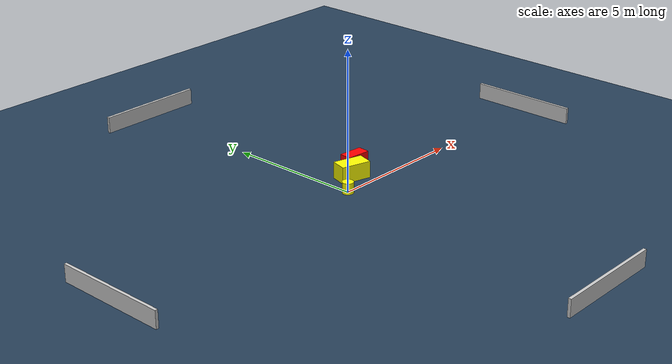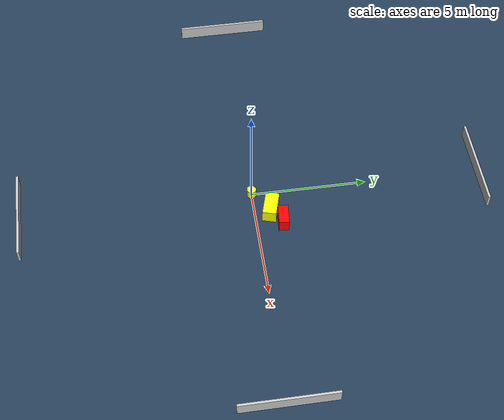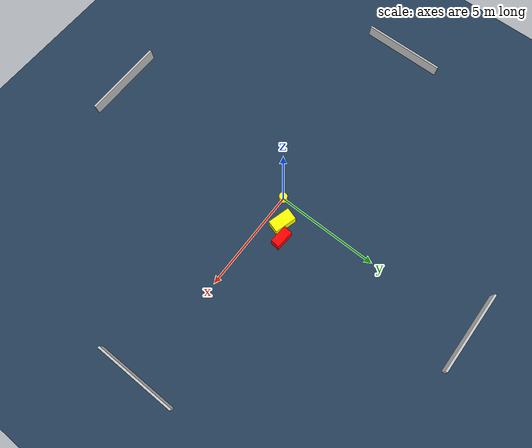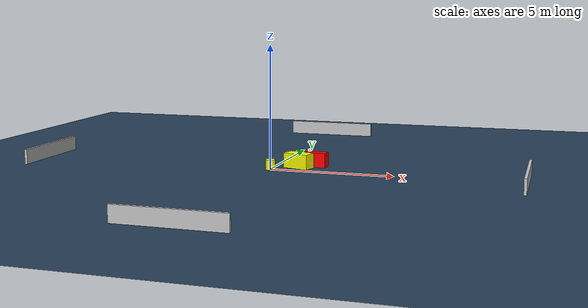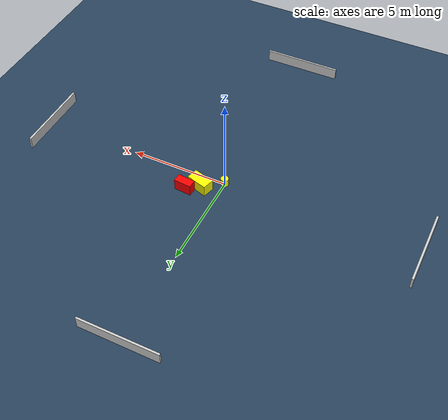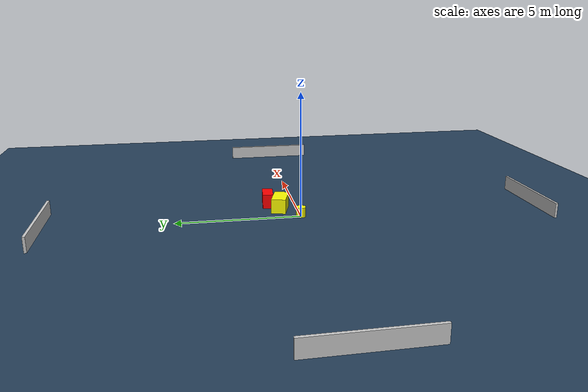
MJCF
<?xml version="1.0" ?>
<mujoco model="generated_environment">
  <option timestep="0.01" integrator="RK4" cone="elliptic"/>
  <default>
    <geom density="1"/>
  </default>
  <asset>
    <texture builtin="gradient" height="3072" name="skybox" rgb1="0.3 0.5 0.7" rgb2="0 0 0" type="skybox" width="512"/>
    <texture builtin="checker" height="300" name="groundplane" rgb1="0.2 0.3 0.4" rgb2="0.1 0.2 0.3" type="2d" width="300"/>
    <material name="groundplane" reflectance="0.2" texrepeat="5 5" texture="groundplane"/>
  </asset>
  <worldbody>
    <light dir="0 0 -1" directional="true" pos="0 0 1.5"/>
    <geom condim="3" friction="0.5 0.005 0.001" material="groundplane" name="floor" pos="0 0 0" size="0 0 0.05" type="plane"/>
    <body name="walls">
      <geom name="wall_1" condim="4" pos="-10.0 0.0 0.3" rgba="0.800000011920929 0.800000011920929 0.800000011920929 1.0" size="0.05 2.0 0.3" type="box"/>
      <geom name="wall_2" condim="4" pos="10.0 0.0 0.3" rgba="0.800000011920929 0.800000011920929 0.800000011920929 1.0" size="0.05 2.0 0.3" type="box"/>
      <geom name="wall_3" condim="4" pos="0.0 -10.0 0.3" rgba="0.800000011920929 0.800000011920929 0.800000011920929 1.0" size="2.0 0.05 0.3" type="box"/>
      <geom name="wall_4" condim="4" pos="0.0 10.0 0.3" rgba="0.800000011920929 0.800000011920929 0.800000011920929 1.0" size="2.0 0.05 0.3" type="box"/>
    </body>
    <body name="robot">
      <joint name="joint_x" type="slide" pos="0 0 0" axis="1 0 0"/>
      <joint name="joint_y" type="slide" pos="0 0 0" axis="0 1 0"/>
      <geom name="robot" type="cylinder" pos="0.0 0.0 0.2" size="0.2 0.2 0.0" mass="5.0" friction="1.0 0.005 0.0001" condim="4" rgba="1.0 1.0 0.0 1.0"/>
    </body>
    <body name="obstacle_1_movable">
      <geom name="obstacle_1_movable" condim="4" pos="0.9760296663509016 0.6964313996144676 0.3" euler="0 0 253.6585016904537" friction="0.0 0.005 0.001" rgba="1.0 1.0 0.0 1.0" size="0.2940456912762871 0.5403206128391781 0.3" type="box" mass="0.1"/>
      <joint type="free"/>
    </body>
    <body name="obstacle_2_static">
      <geom name="obstacle_2_static" condim="4" pos="1.6026079535431472 1.1386406408397702 0.3" euler="0 0 84.85588673836524" friction="0.0 0.005 0.001" rgba="1.0 0.0 0.0 1.0" size="0.2183934901631594 0.4431871150944702 0.3" type="box"/>
    </body>
  </worldbody>
  <actuator>
    <motor name="actuator_x" joint="joint_x" gear="1" ctrlrange="-1 1"/>
    <motor name="actuator_y" joint="joint_y" gear="1" ctrlrange="-1 1"/>
  </actuator>
</mujoco>
